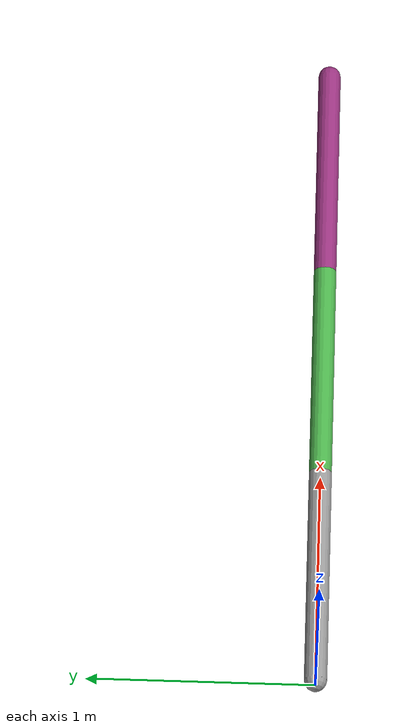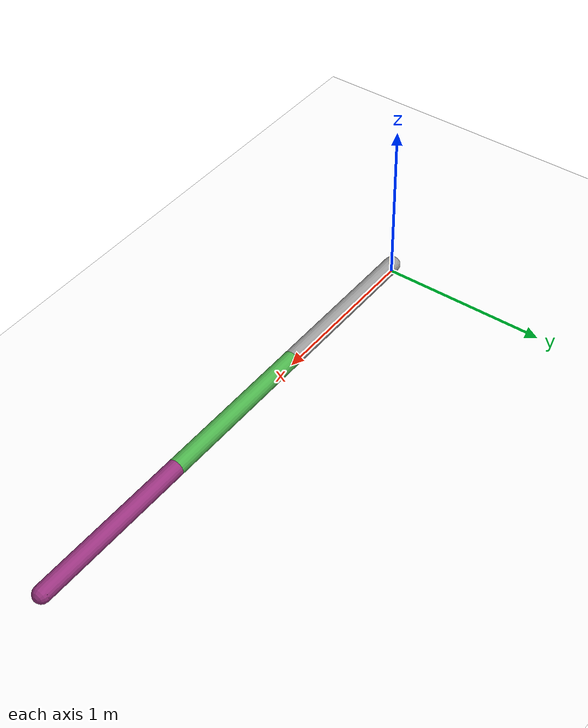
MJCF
<mujoco model="morphology">
  <default>
    <default class="/"/>
  </default>
  <asset>
    <texture name="texplane" type="2d" builtin="checker" rgb1="0.1 0.2 0.3" rgb2="0.2 0.3 0.4" width="300" height="300"/>
    <material name="MatPlane" class="/" texture="texplane" texrepeat="20 20"/>
  </asset>
  <worldbody>
    <light name="//unnamed_light_0" class="/" directional="true" pos="0 0 1.5" dir="0 0 -1.3" cutoff="1e+02" exponent="1" diffuse="1 1 1" specular="0.1 0.1 0.1"/>
    <geom name="ground" class="/" type="plane" size="15 15 0.5" material="MatPlane" rgba="1 1 1 1"/>
    <body name="root" pos="0 0 0.05">
      <geom name="//unnamed_geom_1" class="/" type="capsule" size="0.05" rgba="0.6 0.6 0.6 1" fromto="0 0 0 1 0 0"/>
      <joint name="rootx" class="/" type="slide" axis="1 0 0" limited="false" stiffness="0" armature="0.2" damping="0"/>
      <joint name="rootz" class="/" type="slide" axis="0 0 1" limited="false" stiffness="0" armature="0.2" damping="0"/>
      <joint name="rooty" class="/" type="hinge" axis="0 1 0" limited="false" stiffness="0" armature="0.2" damping="0"/>
      <body name="//unnamed_body_1" pos="1 0 0">
        <joint name="joint1" class="/" type="hinge" pos="0 0 0" axis="0 1 0" limited="true" range="-40 40" armature="0.2"/>
        <geom name="//unnamed_geom_2" class="/" type="capsule" size="0.05" rgba="0.3 0.7 0.3 1" fromto="0 0 0 1 0 0"/>
        <body name="//unnamed_body_2" pos="1 0 0">
          <joint name="joint2" class="/" type="hinge" pos="0 0 0" axis="0 1 0" limited="true" range="-40 40" armature="0.2"/>
          <geom name="//unnamed_geom_3" class="/" type="capsule" size="0.05" rgba="0.6 0.2 0.5 1" fromto="0 0 0 1 0 0"/>
        </body>
      </body>
    </body>
  </worldbody>
  <actuator>
    <motor name="//unnamed_actuator_0" class="/" ctrllimited="true" ctrlrange="-1 1" gear="2e+02" joint="joint1"/>
    <motor name="//unnamed_actuator_1" class="/" ctrllimited="true" ctrlrange="-1 1" gear="2e+02" joint="joint2"/>
  </actuator>
</mujoco>
